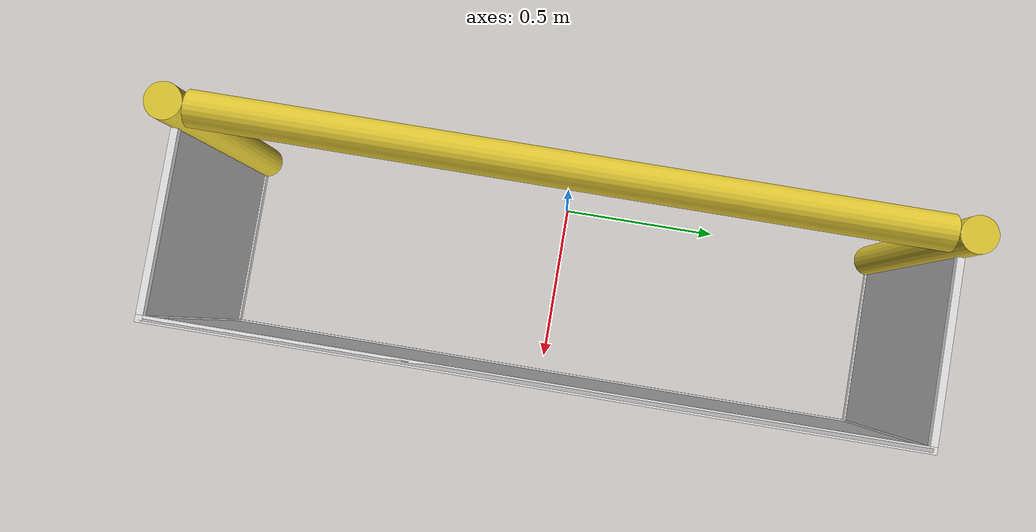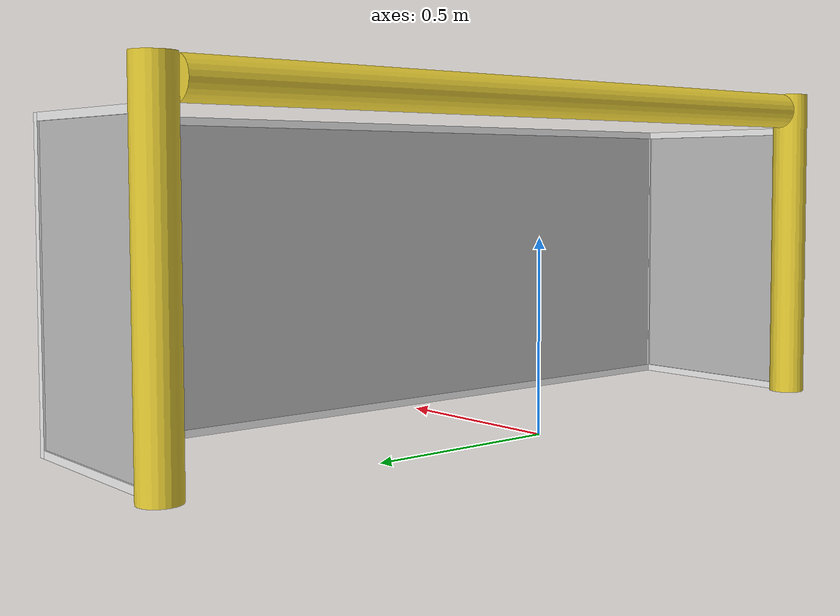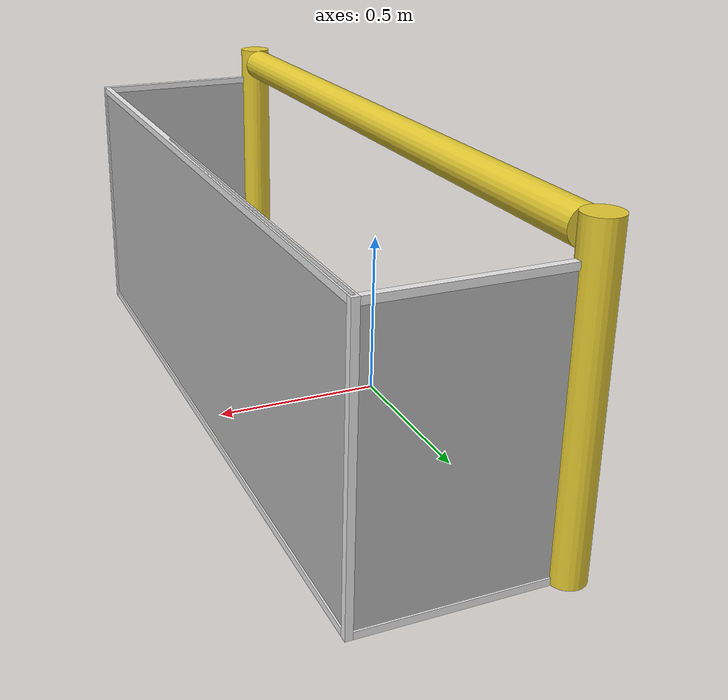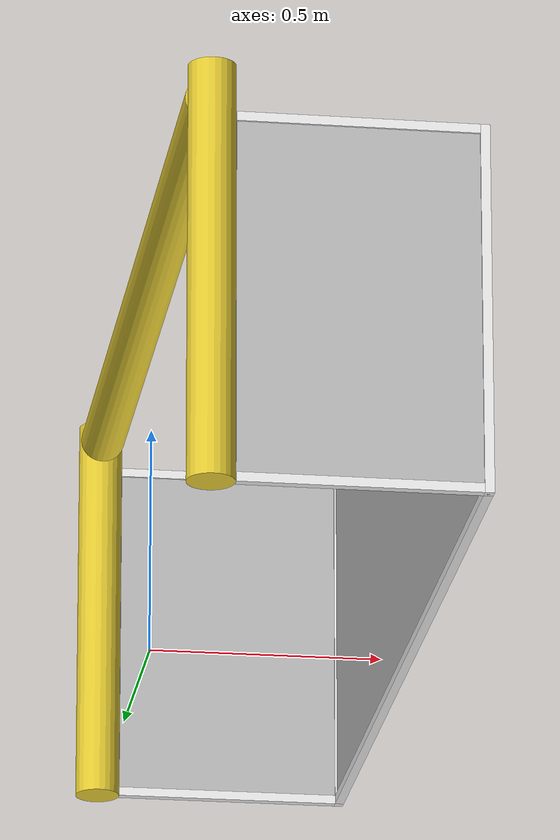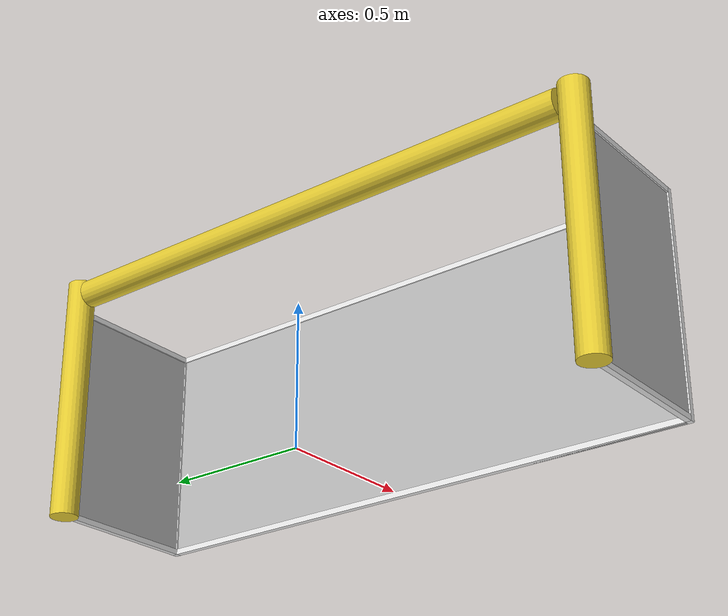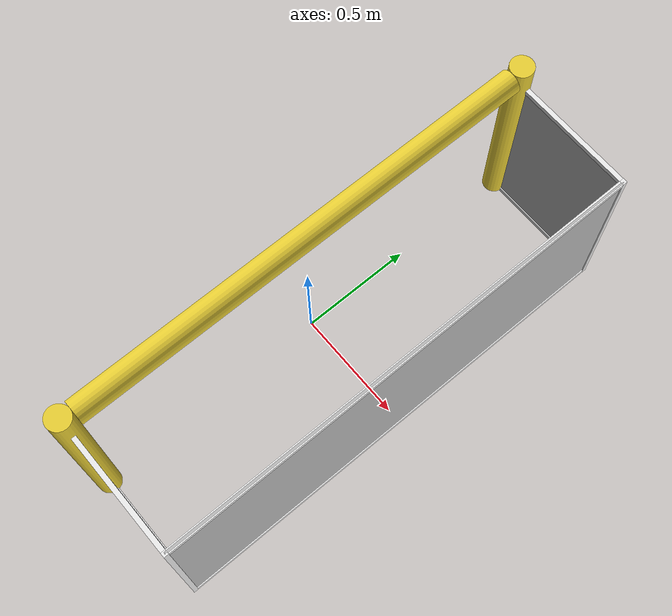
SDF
<?xml version="1.0" ?>
<sdf version="1.5">
  <model name="robocup_3d_goal">
    <static>true</static>
    <link name="left_post">
      <pose>0 1.05 0.45 0 0 0</pose>
      <collision name="collision">
        <geometry>
          <cylinder>
            <radius>0.05</radius>
            <length>0.9</length>
          </cylinder>
        </geometry>
      </collision>
      <visual name="visual">
        <geometry>
          <cylinder>
            <radius>0.05</radius>
            <length>0.9</length>
          </cylinder>
        </geometry>
        <material>
          <script>
            <uri>file://media/materials/scripts/gazebo.material</uri>
            <name>Gazebo/ZincYellow</name>
          </script>
        </material>
      </visual>
    </link>
    <link name="left_support_horiz_lower">
      <pose>0.30 1.05 0.01 0 0 0</pose>
      <collision name="collision">
        <geometry>
          <box>
            <size>0.50 0.02 0.02</size>
          </box>
        </geometry>
      </collision>
      <visual name="visual">
        <geometry>
          <box>
            <size>0.50 0.02 0.02</size>
          </box>
        </geometry>
        <material>
          <script>
            <uri>file://media/materials/scripts/gazebo.material</uri>
            <name>Gazebo/White</name>
          </script>
        </material>
      </visual>
    </link>
    <link name="left_support_horiz_upper">
      <pose>0.30 1.05 0.79 0 0 0</pose>
      <collision name="collision">
        <geometry>
          <box>
            <size>0.50 0.02 0.02</size>
          </box>
        </geometry>
      </collision>
      <visual name="visual">
        <geometry>
          <box>
            <size>0.50 0.02 0.02</size>
          </box>
        </geometry>
        <material>
          <script>
            <uri>file://media/materials/scripts/gazebo.material</uri>
            <name>Gazebo/White</name>
          </script>
        </material>
      </visual>
    </link>
    <link name="left_support_vertical">
      <pose>0.56 1.05 0.4 0 1.5708 0</pose>
      <collision name="collision">
        <geometry>
          <box>
            <size>0.80 0.02 0.02</size>
          </box>
        </geometry>
      </collision>
      <visual name="visual">
        <geometry>
          <box>
            <size>0.80 0.02 0.02</size>
          </box>
        </geometry>
        <material>
          <script>
            <uri>file://media/materials/scripts/gazebo.material</uri>
            <name>Gazebo/White</name>
          </script>
        </material>
      </visual>
    </link>
    <link name="right_support_horiz_lower">
      <pose>0.30 -1.05 0.01 0 0 0</pose>
      <collision name="collision">
        <geometry>
          <box>
            <size>0.50 0.02 0.02</size>
          </box>
        </geometry>
      </collision>
      <visual name="visual">
        <geometry>
          <box>
            <size>0.50 0.02 0.02</size>
          </box>
        </geometry>
        <material>
          <script>
            <uri>file://media/materials/scripts/gazebo.material</uri>
            <name>Gazebo/White</name>
          </script>
        </material>
      </visual>
    </link>
    <link name="right_support_horiz_upper">
      <pose>0.30 -1.05 0.79 0 0 0</pose>
      <collision name="collision">
        <geometry>
          <box>
            <size>0.50 0.02 0.02</size>
          </box>
        </geometry>
      </collision>
      <visual name="visual">
        <geometry>
          <box>
            <size>0.50 0.02 0.02</size>
          </box>
        </geometry>
        <material>
          <script>
            <uri>file://media/materials/scripts/gazebo.material</uri>
            <name>Gazebo/White</name>
          </script>
        </material>
      </visual>
    </link>
    <link name="right_support_vertical">
      <pose>0.56 -1.05 0.4 0 1.5708 0</pose>
      <collision name="collision">
        <geometry>
          <box>
            <size>0.80 0.02 0.02</size>
          </box>
        </geometry>
      </collision>
      <visual name="visual">
        <geometry>
          <box>
            <size>0.80 0.02 0.02</size>
          </box>
        </geometry>
        <material>
          <script>
            <uri>file://media/materials/scripts/gazebo.material</uri>
            <name>Gazebo/White</name>
          </script>
        </material>
      </visual>
    </link>
    <link name="center_support_horiz_lower">
      <pose>0.56 0 0.01 0 1.5708 0</pose>
      <collision name="collision">
        <geometry>
          <box>
            <size>0.02 2.08 0.02</size>
          </box>
        </geometry>
      </collision>
      <visual name="visual">
        <geometry>
          <box>
            <size>0.02 2.08 0.02</size>
          </box>
        </geometry>
        <material>
          <script>
            <uri>file://media/materials/scripts/gazebo.material</uri>
            <name>Gazebo/White</name>
          </script>
        </material>
      </visual>
    </link>
    <link name="center_support_horiz_upper">
      <pose>0.56 0 0.79 0 1.5708 0</pose>
      <collision name="collision">
        <geometry>
          <box>
            <size>0.02 2.08 0.02</size>
          </box>
        </geometry>
      </collision>
      <visual name="visual">
        <geometry>
          <box>
            <size>0.02 2.08 0.02</size>
          </box>
        </geometry>
        <material>
          <script>
            <uri>file://media/materials/scripts/gazebo.material</uri>
            <name>Gazebo/White</name>
          </script>
        </material>
      </visual>
    </link>
    <link name="right_post">
      <pose>0 -1.05 0.45 0 0 0</pose>
      <collision name="collision">
        <geometry>
          <cylinder>
            <radius>0.05</radius>
            <length>0.9</length>
          </cylinder>
        </geometry>
      </collision>
      <visual name="visual">
        <geometry>
          <cylinder>
            <radius>0.05</radius>
            <length>0.9</length>
          </cylinder>
        </geometry>
        <material>
          <script>
            <uri>file://media/materials/scripts/gazebo.material</uri>
            <name>Gazebo/ZincYellow</name>
          </script>
        </material>
      </visual>
    </link>
    <link name="crossbar">
      <pose>0 0 0.85 1.57 1.57 0</pose>
      <collision name="collision">
        <geometry>
          <cylinder>
            <radius>0.05</radius>
            <length>2.0</length>
          </cylinder>
        </geometry>
      </collision>
      <visual name="visual">
        <geometry>
          <cylinder>
            <radius>0.05</radius>
            <length>2.0</length>
          </cylinder>
        </geometry>
        <material>
          <script>
            <uri>file://media/materials/scripts/gazebo.material</uri>
            <name>Gazebo/ZincYellow</name>
          </script>
        </material>
      </visual>
    </link>
    <link name="center_net">
      <pose>0.56 0 0.40 0 0 0</pose>
      <collision name="collision">
        <geometry>
          <box>
            <size>0.01 2.1 0.80</size>
          </box>
        </geometry>
      </collision>
      <visual name="visual">
        <geometry>
          <box>
            <size>0.01 2.1 0.80</size>
          </box>
        </geometry>
        <material>
          <script>
            <uri>model://../model_source/models/robocup09_spl_field/materials/scripts/</uri>
            <uri>model://../model_source/models/robocup09_spl_field/materials/textures/</uri>
            <name>RoboCup/Net</name>
          </script>
        </material>
      </visual>
    </link>
    <link name="left_net">
      <pose>0.30 1.05 0.40 0 0 0</pose>
      <collision name="collision">
        <geometry>
          <box>
            <size>0.50 0.01 0.76</size>
          </box>
        </geometry>
      </collision>
      <visual name="visual">
        <geometry>
          <box>
            <size>0.50 0.01 0.76</size>
          </box>
        </geometry>
        <material>
          <script>
            <uri>model://../model_source/models/robocup09_spl_field/materials/scripts/</uri>
            <uri>model://../model_source/models/robocup09_spl_field/materials/textures/</uri>
            <name>RoboCup/Net</name>
          </script>
        </material>
      </visual>
    </link>
    <link name="right_net">
      <pose>0.30 -1.05 0.40 0 0 0</pose>
      <collision name="collision">
        <geometry>
          <box>
            <size>0.50 0.01 0.76</size>
          </box>
        </geometry>
      </collision>
      <visual name="visual">
        <geometry>
          <box>
            <size>0.50 0.01 0.76</size>
          </box>
        </geometry>
        <material>
          <script>
            <uri>model://../model_source/models/robocup09_spl_field/materials/scripts/</uri>
            <uri>model://../model_source/models/robocup09_spl_field/materials/textures/</uri>
            <name>RoboCup/Net</name>
          </script>
        </material>
      </visual>
    </link>
  </model>
</sdf>
